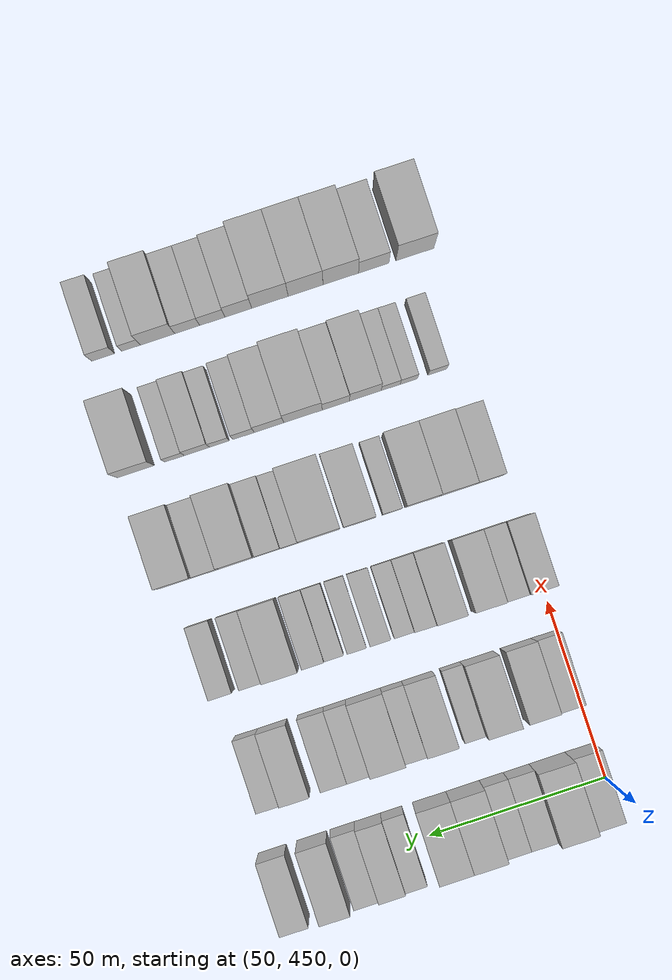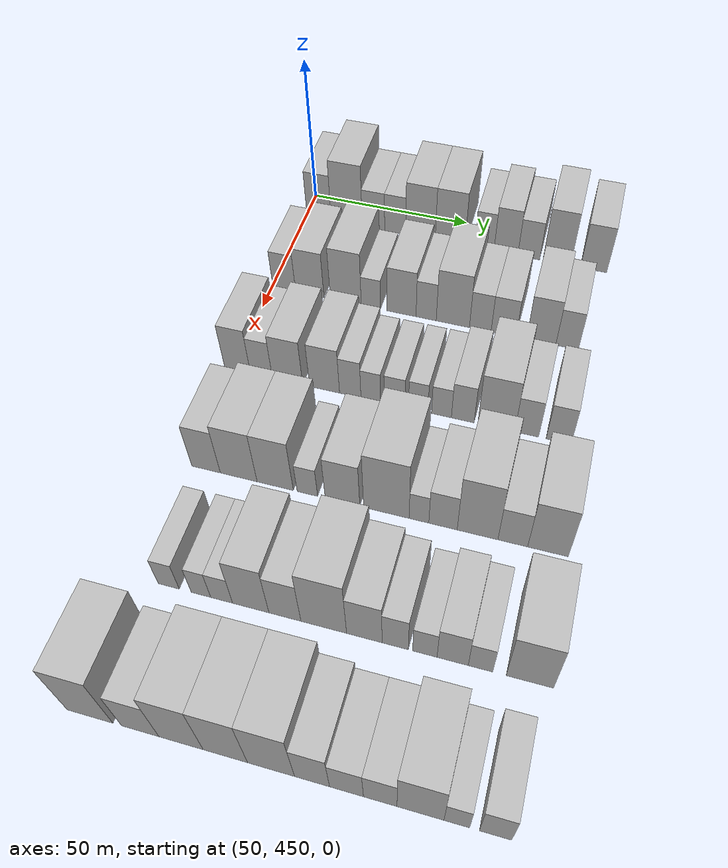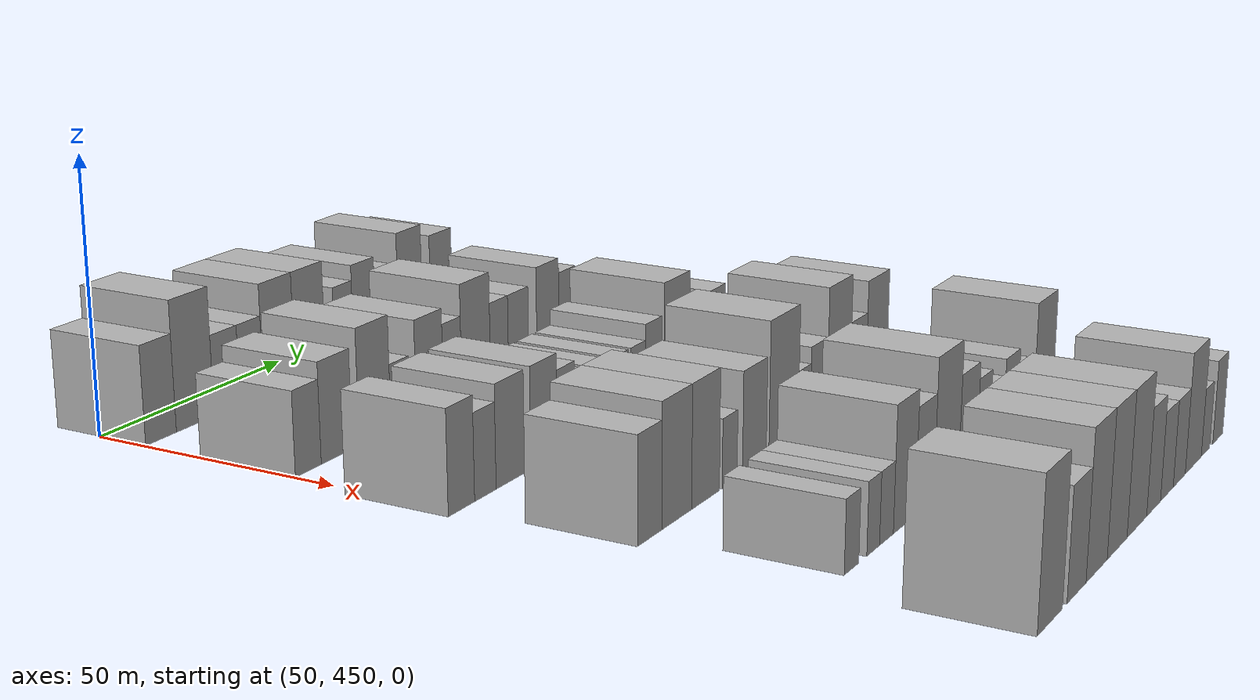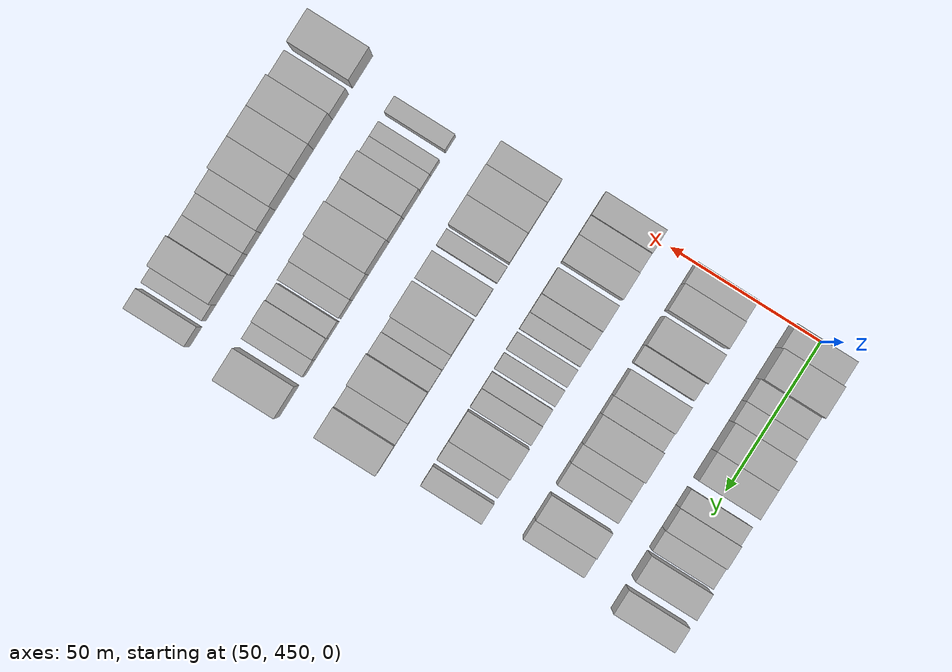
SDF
<sdf version="1.6">
 <world name="default">
  <model name="building_108">
   <static>1</static>
   <pose>50.0000 454.2771 0 0.000000 0.000000 0.000000</pose>
   <link name="link">
    <pose>0 0 9.00 0 0 0</pose>
    <collision name="collision"><geometry><box><size>20.0000 8.0260 18.0000</size></box></geometry></collision>
    <visual name="visual">
     <cast_shadows>0</cast_shadows>
     <geometry><box><size>20.0000 8.0260 18.0000</size></box></geometry>
     <material>
      <script>
       <uri>model://HANNAS_wall/materials/scripts</uri>
       <uri>model://HANNAS_wall/materials/textures</uri>
       <name>vrc/HANNAS_wall</name>
      </script>
     </material>
    </visual>
   </link>
  </model>
  <model name="building_109">
   <static>1</static>
   <pose>50.0000 463.4015 0 0.000000 0.000000 0.000000</pose>
   <link name="link">
    <pose>0 0 12.00 0 0 0</pose>
    <collision name="collision"><geometry><box><size>20.0000 10.2229 24.0000</size></box></geometry></collision>
    <visual name="visual">
     <cast_shadows>0</cast_shadows>
     <geometry><box><size>20.0000 10.2229 24.0000</size></box></geometry>
     <material>
      <script>
       <uri>model://HANNAS_wall/materials/scripts</uri>
       <uri>model://HANNAS_wall/materials/textures</uri>
       <name>vrc/HANNAS_wall</name>
      </script>
     </material>
    </visual>
   </link>
  </model>
  <model name="building_110">
   <static>1</static>
   <pose>50.0000 472.1672 0 0.000000 0.000000 0.000000</pose>
   <link name="link">
    <pose>0 0 7.50 0 0 0</pose>
    <collision name="collision"><geometry><box><size>20.0000 7.3084 15.0000</size></box></geometry></collision>
    <visual name="visual">
     <cast_shadows>0</cast_shadows>
     <geometry><box><size>20.0000 7.3084 15.0000</size></box></geometry>
     <material>
      <script>
       <uri>model://HANNAS_wall/materials/scripts</uri>
       <uri>model://HANNAS_wall/materials/textures</uri>
       <name>vrc/HANNAS_wall</name>
      </script>
     </material>
    </visual>
   </link>
  </model>
  <model name="building_111">
   <static>1</static>
   <pose>50.0000 479.2193 0 0.000000 0.000000 0.000000</pose>
   <link name="link">
    <pose>0 0 7.50 0 0 0</pose>
    <collision name="collision"><geometry><box><size>20.0000 6.7959 15.0000</size></box></geometry></collision>
    <visual name="visual">
     <cast_shadows>0</cast_shadows>
     <geometry><box><size>20.0000 6.7959 15.0000</size></box></geometry>
     <material>
      <script>
       <uri>model://HANNAS_wall/materials/scripts</uri>
       <uri>model://HANNAS_wall/materials/textures</uri>
       <name>vrc/HANNAS_wall</name>
      </script>
     </material>
    </visual>
   </link>
  </model>
  <model name="building_112">
   <static>1</static>
   <pose>50.0000 487.3490 0 0.000000 0.000000 0.000000</pose>
   <link name="link">
    <pose>0 0 10.50 0 0 0</pose>
    <collision name="collision"><geometry><box><size>20.0000 9.4635 21.0000</size></box></geometry></collision>
    <visual name="visual">
     <cast_shadows>0</cast_shadows>
     <geometry><box><size>20.0000 9.4635 21.0000</size></box></geometry>
     <material>
      <script>
       <uri>model://HANNAS_wall/materials/scripts</uri>
       <uri>model://HANNAS_wall/materials/textures</uri>
       <name>vrc/HANNAS_wall</name>
      </script>
     </material>
    </visual>
   </link>
  </model>
  <model name="building_113">
   <static>1</static>
   <pose>50.0000 496.8126 0 0.000000 0.000000 0.000000</pose>
   <link name="link">
    <pose>0 0 10.50 0 0 0</pose>
    <collision name="collision"><geometry><box><size>20.0000 9.4638 21.0000</size></box></geometry></collision>
    <visual name="visual">
     <cast_shadows>0</cast_shadows>
     <geometry><box><size>20.0000 9.4638 21.0000</size></box></geometry>
     <material>
      <script>
       <uri>model://HANNAS_wall/materials/scripts</uri>
       <uri>model://HANNAS_wall/materials/textures</uri>
       <name>vrc/HANNAS_wall</name>
      </script>
     </material>
    </visual>
   </link>
  </model>
  <model name="building_114">
   <static>1</static>
   <pose>50.0000 507.5880 0 0.000000 0.000000 0.000000</pose>
   <link name="link">
    <pose>0 0 7.50 0 0 0</pose>
    <collision name="collision"><geometry><box><size>20.0000 6.0870 15.0000</size></box></geometry></collision>
    <visual name="visual">
     <cast_shadows>0</cast_shadows>
     <geometry><box><size>20.0000 6.0870 15.0000</size></box></geometry>
     <material>
      <script>
       <uri>model://HANNAS_wall/materials/scripts</uri>
       <uri>model://HANNAS_wall/materials/textures</uri>
       <name>vrc/HANNAS_wall</name>
      </script>
     </material>
    </visual>
   </link>
  </model>
  <model name="building_115">
   <static>1</static>
   <pose>50.0000 514.3522 0 0.000000 0.000000 0.000000</pose>
   <link name="link">
    <pose>0 0 9.00 0 0 0</pose>
    <collision name="collision"><geometry><box><size>20.0000 7.4412 18.0000</size></box></geometry></collision>
    <visual name="visual">
     <cast_shadows>0</cast_shadows>
     <geometry><box><size>20.0000 7.4412 18.0000</size></box></geometry>
     <material>
      <script>
       <uri>model://HANNAS_wall/materials/scripts</uri>
       <uri>model://HANNAS_wall/materials/textures</uri>
       <name>vrc/HANNAS_wall</name>
      </script>
     </material>
    </visual>
   </link>
  </model>
  <model name="building_116">
   <static>1</static>
   <pose>50.0000 521.4611 0 0.000000 0.000000 0.000000</pose>
   <link name="link">
    <pose>0 0 7.50 0 0 0</pose>
    <collision name="collision"><geometry><box><size>20.0000 6.7766 15.0000</size></box></geometry></collision>
    <visual name="visual">
     <cast_shadows>0</cast_shadows>
     <geometry><box><size>20.0000 6.7766 15.0000</size></box></geometry>
     <material>
      <script>
       <uri>model://HANNAS_wall/materials/scripts</uri>
       <uri>model://HANNAS_wall/materials/textures</uri>
       <name>vrc/HANNAS_wall</name>
      </script>
     </material>
    </visual>
   </link>
  </model>
  <model name="building_117">
   <static>1</static>
   <pose>50.0000 530.0704 0 0.000000 0.000000 0.000000</pose>
   <link name="link">
    <pose>0 0 10.50 0 0 0</pose>
    <collision name="collision"><geometry><box><size>20.0000 8.4420 21.0000</size></box></geometry></collision>
    <visual name="visual">
     <cast_shadows>0</cast_shadows>
     <geometry><box><size>20.0000 8.4420 21.0000</size></box></geometry>
     <material>
      <script>
       <uri>model://HANNAS_wall/materials/scripts</uri>
       <uri>model://HANNAS_wall/materials/textures</uri>
       <name>vrc/HANNAS_wall</name>
      </script>
     </material>
    </visual>
   </link>
  </model>
  <model name="building_118">
   <static>1</static>
   <pose>50.0000 541.2532 0 0.000000 0.000000 0.000000</pose>
   <link name="link">
    <pose>0 0 9.00 0 0 0</pose>
    <collision name="collision"><geometry><box><size>20.0000 7.9237 18.0000</size></box></geometry></collision>
    <visual name="visual">
     <cast_shadows>0</cast_shadows>
     <geometry><box><size>20.0000 7.9237 18.0000</size></box></geometry>
     <material>
      <script>
       <uri>model://HANNAS_wall/materials/scripts</uri>
       <uri>model://HANNAS_wall/materials/textures</uri>
       <name>vrc/HANNAS_wall</name>
      </script>
     </material>
    </visual>
   </link>
  </model>
  <model name="building_225">
   <static>1</static>
   <pose>82.0000 453.8159 0 0.000000 0.000000 0.000000</pose>
   <link name="link">
    <pose>0 0 7.50 0 0 0</pose>
    <collision name="collision"><geometry><box><size>20.0000 7.0772 15.0000</size></box></geometry></collision>
    <visual name="visual">
     <cast_shadows>0</cast_shadows>
     <geometry><box><size>20.0000 7.0772 15.0000</size></box></geometry>
     <material>
      <script>
       <uri>model://HANNAS_wall/materials/scripts</uri>
       <uri>model://HANNAS_wall/materials/textures</uri>
       <name>vrc/HANNAS_wall</name>
      </script>
     </material>
    </visual>
   </link>
  </model>
  <model name="building_226">
   <static>1</static>
   <pose>82.0000 461.7477 0 0.000000 0.000000 0.000000</pose>
   <link name="link">
    <pose>0 0 9.00 0 0 0</pose>
    <collision name="collision"><geometry><box><size>20.0000 8.7863 18.0000</size></box></geometry></collision>
    <visual name="visual">
     <cast_shadows>0</cast_shadows>
     <geometry><box><size>20.0000 8.7863 18.0000</size></box></geometry>
     <material>
      <script>
       <uri>model://HANNAS_wall/materials/scripts</uri>
       <uri>model://HANNAS_wall/materials/textures</uri>
       <name>vrc/HANNAS_wall</name>
      </script>
     </material>
    </visual>
   </link>
  </model>
  <model name="building_227">
   <static>1</static>
   <pose>82.0000 472.8587 0 0.000000 0.000000 0.000000</pose>
   <link name="link">
    <pose>0 0 10.50 0 0 0</pose>
    <collision name="collision"><geometry><box><size>20.0000 9.4357 21.0000</size></box></geometry></collision>
    <visual name="visual">
     <cast_shadows>0</cast_shadows>
     <geometry><box><size>20.0000 9.4357 21.0000</size></box></geometry>
     <material>
      <script>
       <uri>model://HANNAS_wall/materials/scripts</uri>
       <uri>model://HANNAS_wall/materials/textures</uri>
       <name>vrc/HANNAS_wall</name>
      </script>
     </material>
    </visual>
   </link>
  </model>
  <model name="building_228">
   <static>1</static>
   <pose>82.0000 480.4964 0 0.000000 0.000000 0.000000</pose>
   <link name="link">
    <pose>0 0 6.00 0 0 0</pose>
    <collision name="collision"><geometry><box><size>20.0000 5.8397 12.0000</size></box></geometry></collision>
    <visual name="visual">
     <cast_shadows>0</cast_shadows>
     <geometry><box><size>20.0000 5.8397 12.0000</size></box></geometry>
     <material>
      <script>
       <uri>model://HANNAS_wall/materials/scripts</uri>
       <uri>model://HANNAS_wall/materials/textures</uri>
       <name>vrc/HANNAS_wall</name>
      </script>
     </material>
    </visual>
   </link>
  </model>
  <model name="building_229">
   <static>1</static>
   <pose>82.0000 489.7523 0 0.000000 0.000000 0.000000</pose>
   <link name="link">
    <pose>0 0 9.00 0 0 0</pose>
    <collision name="collision"><geometry><box><size>20.0000 8.6721 18.0000</size></box></geometry></collision>
    <visual name="visual">
     <cast_shadows>0</cast_shadows>
     <geometry><box><size>20.0000 8.6721 18.0000</size></box></geometry>
     <material>
      <script>
       <uri>model://HANNAS_wall/materials/scripts</uri>
       <uri>model://HANNAS_wall/materials/textures</uri>
       <name>vrc/HANNAS_wall</name>
      </script>
     </material>
    </visual>
   </link>
  </model>
  <model name="building_230">
   <static>1</static>
   <pose>82.0000 497.0952 0 0.000000 0.000000 0.000000</pose>
   <link name="link">
    <pose>0 0 7.50 0 0 0</pose>
    <collision name="collision"><geometry><box><size>20.0000 6.0137 15.0000</size></box></geometry></collision>
    <visual name="visual">
     <cast_shadows>0</cast_shadows>
     <geometry><box><size>20.0000 6.0137 15.0000</size></box></geometry>
     <material>
      <script>
       <uri>model://HANNAS_wall/materials/scripts</uri>
       <uri>model://HANNAS_wall/materials/textures</uri>
       <name>vrc/HANNAS_wall</name>
      </script>
     </material>
    </visual>
   </link>
  </model>
  <model name="building_231">
   <static>1</static>
   <pose>82.0000 504.9942 0 0.000000 0.000000 0.000000</pose>
   <link name="link">
    <pose>0 0 10.50 0 0 0</pose>
    <collision name="collision"><geometry><box><size>20.0000 9.7842 21.0000</size></box></geometry></collision>
    <visual name="visual">
     <cast_shadows>0</cast_shadows>
     <geometry><box><size>20.0000 9.7842 21.0000</size></box></geometry>
     <material>
      <script>
       <uri>model://HANNAS_wall/materials/scripts</uri>
       <uri>model://HANNAS_wall/materials/textures</uri>
       <name>vrc/HANNAS_wall</name>
      </script>
     </material>
    </visual>
   </link>
  </model>
  <model name="building_232">
   <static>1</static>
   <pose>82.0000 513.0436 0 0.000000 0.000000 0.000000</pose>
   <link name="link">
    <pose>0 0 7.50 0 0 0</pose>
    <collision name="collision"><geometry><box><size>20.0000 6.3147 15.0000</size></box></geometry></collision>
    <visual name="visual">
     <cast_shadows>0</cast_shadows>
     <geometry><box><size>20.0000 6.3147 15.0000</size></box></geometry>
     <material>
      <script>
       <uri>model://HANNAS_wall/materials/scripts</uri>
       <uri>model://HANNAS_wall/materials/textures</uri>
       <name>vrc/HANNAS_wall</name>
      </script>
     </material>
    </visual>
   </link>
  </model>
  <model name="building_233">
   <static>1</static>
   <pose>82.0000 519.8409 0 0.000000 0.000000 0.000000</pose>
   <link name="link">
    <pose>0 0 7.50 0 0 0</pose>
    <collision name="collision"><geometry><box><size>20.0000 7.2799 15.0000</size></box></geometry></collision>
    <visual name="visual">
     <cast_shadows>0</cast_shadows>
     <geometry><box><size>20.0000 7.2799 15.0000</size></box></geometry>
     <material>
      <script>
       <uri>model://HANNAS_wall/materials/scripts</uri>
       <uri>model://HANNAS_wall/materials/textures</uri>
       <name>vrc/HANNAS_wall</name>
      </script>
     </material>
    </visual>
   </link>
  </model>
  <model name="building_234">
   <static>1</static>
   <pose>82.0000 530.6489 0 0.000000 0.000000 0.000000</pose>
   <link name="link">
    <pose>0 0 9.00 0 0 0</pose>
    <collision name="collision"><geometry><box><size>20.0000 8.3361 18.0000</size></box></geometry></collision>
    <visual name="visual">
     <cast_shadows>0</cast_shadows>
     <geometry><box><size>20.0000 8.3361 18.0000</size></box></geometry>
     <material>
      <script>
       <uri>model://HANNAS_wall/materials/scripts</uri>
       <uri>model://HANNAS_wall/materials/textures</uri>
       <name>vrc/HANNAS_wall</name>
      </script>
     </material>
    </visual>
   </link>
  </model>
  <model name="building_235">
   <static>1</static>
   <pose>82.0000 538.0205 0 0.000000 0.000000 0.000000</pose>
   <link name="link">
    <pose>0 0 7.50 0 0 0</pose>
    <collision name="collision"><geometry><box><size>20.0000 6.4071 15.0000</size></box></geometry></collision>
    <visual name="visual">
     <cast_shadows>0</cast_shadows>
     <geometry><box><size>20.0000 6.4071 15.0000</size></box></geometry>
     <material>
      <script>
       <uri>model://HANNAS_wall/materials/scripts</uri>
       <uri>model://HANNAS_wall/materials/textures</uri>
       <name>vrc/HANNAS_wall</name>
      </script>
     </material>
    </visual>
   </link>
  </model>
  <model name="building_341">
   <static>1</static>
   <pose>114.0000 451.3729 0 0.000000 0.000000 0.000000</pose>
   <link name="link">
    <pose>0 0 9.00 0 0 0</pose>
    <collision name="collision"><geometry><box><size>20.0000 7.5914 18.0000</size></box></geometry></collision>
    <visual name="visual">
     <cast_shadows>0</cast_shadows>
     <geometry><box><size>20.0000 7.5914 18.0000</size></box></geometry>
     <material>
      <script>
       <uri>model://HANNAS_wall/materials/scripts</uri>
       <uri>model://HANNAS_wall/materials/textures</uri>
       <name>vrc/HANNAS_wall</name>
      </script>
     </material>
    </visual>
   </link>
  </model>
  <model name="building_342">
   <static>1</static>
   <pose>114.0000 458.3645 0 0.000000 0.000000 0.000000</pose>
   <link name="link">
    <pose>0 0 7.50 0 0 0</pose>
    <collision name="collision"><geometry><box><size>20.0000 6.3919 15.0000</size></box></geometry></collision>
    <visual name="visual">
     <cast_shadows>0</cast_shadows>
     <geometry><box><size>20.0000 6.3919 15.0000</size></box></geometry>
     <material>
      <script>
       <uri>model://HANNAS_wall/materials/scripts</uri>
       <uri>model://HANNAS_wall/materials/textures</uri>
       <name>vrc/HANNAS_wall</name>
      </script>
     </material>
    </visual>
   </link>
  </model>
  <model name="building_343">
   <static>1</static>
   <pose>114.0000 465.9422 0 0.000000 0.000000 0.000000</pose>
   <link name="link">
    <pose>0 0 9.00 0 0 0</pose>
    <collision name="collision"><geometry><box><size>20.0000 8.7634 18.0000</size></box></geometry></collision>
    <visual name="visual">
     <cast_shadows>0</cast_shadows>
     <geometry><box><size>20.0000 8.7634 18.0000</size></box></geometry>
     <material>
      <script>
       <uri>model://HANNAS_wall/materials/scripts</uri>
       <uri>model://HANNAS_wall/materials/textures</uri>
       <name>vrc/HANNAS_wall</name>
      </script>
     </material>
    </visual>
   </link>
  </model>
  <model name="building_344">
   <static>1</static>
   <pose>114.0000 476.5803 0 0.000000 0.000000 0.000000</pose>
   <link name="link">
    <pose>0 0 9.00 0 0 0</pose>
    <collision name="collision"><geometry><box><size>20.0000 8.5128 18.0000</size></box></geometry></collision>
    <visual name="visual">
     <cast_shadows>0</cast_shadows>
     <geometry><box><size>20.0000 8.5128 18.0000</size></box></geometry>
     <material>
      <script>
       <uri>model://HANNAS_wall/materials/scripts</uri>
       <uri>model://HANNAS_wall/materials/textures</uri>
       <name>vrc/HANNAS_wall</name>
      </script>
     </material>
    </visual>
   </link>
  </model>
  <model name="building_345">
   <static>1</static>
   <pose>114.0000 483.8588 0 0.000000 0.000000 0.000000</pose>
   <link name="link">
    <pose>0 0 7.50 0 0 0</pose>
    <collision name="collision"><geometry><box><size>20.0000 6.0441 15.0000</size></box></geometry></collision>
    <visual name="visual">
     <cast_shadows>0</cast_shadows>
     <geometry><box><size>20.0000 6.0441 15.0000</size></box></geometry>
     <material>
      <script>
       <uri>model://HANNAS_wall/materials/scripts</uri>
       <uri>model://HANNAS_wall/materials/textures</uri>
       <name>vrc/HANNAS_wall</name>
      </script>
     </material>
    </visual>
   </link>
  </model>
  <model name="building_346">
   <static>1</static>
   <pose>114.0000 489.6306 0 0.000000 0.000000 0.000000</pose>
   <link name="link">
    <pose>0 0 6.00 0 0 0</pose>
    <collision name="collision"><geometry><box><size>20.0000 5.4995 12.0000</size></box></geometry></collision>
    <visual name="visual">
     <cast_shadows>0</cast_shadows>
     <geometry><box><size>20.0000 5.4995 12.0000</size></box></geometry>
     <material>
      <script>
       <uri>model://HANNAS_wall/materials/scripts</uri>
       <uri>model://HANNAS_wall/materials/textures</uri>
       <name>vrc/HANNAS_wall</name>
      </script>
     </material>
    </visual>
   </link>
  </model>
  <model name="building_347">
   <static>1</static>
   <pose>114.0000 496.2754 0 0.000000 0.000000 0.000000</pose>
   <link name="link">
    <pose>0 0 6.00 0 0 0</pose>
    <collision name="collision"><geometry><box><size>20.0000 5.7899 12.0000</size></box></geometry></collision>
    <visual name="visual">
     <cast_shadows>0</cast_shadows>
     <geometry><box><size>20.0000 5.7899 12.0000</size></box></geometry>
     <material>
      <script>
       <uri>model://HANNAS_wall/materials/scripts</uri>
       <uri>model://HANNAS_wall/materials/textures</uri>
       <name>vrc/HANNAS_wall</name>
      </script>
     </material>
    </visual>
   </link>
  </model>
  <model name="building_348">
   <static>1</static>
   <pose>114.0000 502.8290 0 0.000000 0.000000 0.000000</pose>
   <link name="link">
    <pose>0 0 6.00 0 0 0</pose>
    <collision name="collision"><geometry><box><size>20.0000 5.3175 12.0000</size></box></geometry></collision>
    <visual name="visual">
     <cast_shadows>0</cast_shadows>
     <geometry><box><size>20.0000 5.3175 12.0000</size></box></geometry>
     <material>
      <script>
       <uri>model://HANNAS_wall/materials/scripts</uri>
       <uri>model://HANNAS_wall/materials/textures</uri>
       <name>vrc/HANNAS_wall</name>
      </script>
     </material>
    </visual>
   </link>
  </model>
  <model name="building_349">
   <static>1</static>
   <pose>114.0000 509.2004 0 0.000000 0.000000 0.000000</pose>
   <link name="link">
    <pose>0 0 6.00 0 0 0</pose>
    <collision name="collision"><geometry><box><size>20.0000 5.4253 12.0000</size></box></geometry></collision>
    <visual name="visual">
     <cast_shadows>0</cast_shadows>
     <geometry><box><size>20.0000 5.4253 12.0000</size></box></geometry>
     <material>
      <script>
       <uri>model://HANNAS_wall/materials/scripts</uri>
       <uri>model://HANNAS_wall/materials/textures</uri>
       <name>vrc/HANNAS_wall</name>
      </script>
     </material>
    </visual>
   </link>
  </model>
  <model name="building_350">
   <static>1</static>
   <pose>114.0000 515.0055 0 0.000000 0.000000 0.000000</pose>
   <link name="link">
    <pose>0 0 7.50 0 0 0</pose>
    <collision name="collision"><geometry><box><size>20.0000 6.1849 15.0000</size></box></geometry></collision>
    <visual name="visual">
     <cast_shadows>0</cast_shadows>
     <geometry><box><size>20.0000 6.1849 15.0000</size></box></geometry>
     <material>
      <script>
       <uri>model://HANNAS_wall/materials/scripts</uri>
       <uri>model://HANNAS_wall/materials/textures</uri>
       <name>vrc/HANNAS_wall</name>
      </script>
     </material>
    </visual>
   </link>
  </model>
  <model name="building_351">
   <static>1</static>
   <pose>114.0000 524.0434 0 0.000000 0.000000 0.000000</pose>
   <link name="link">
    <pose>0 0 10.50 0 0 0</pose>
    <collision name="collision"><geometry><box><size>20.0000 9.8908 21.0000</size></box></geometry></collision>
    <visual name="visual">
     <cast_shadows>0</cast_shadows>
     <geometry><box><size>20.0000 9.8908 21.0000</size></box></geometry>
     <material>
      <script>
       <uri>model://HANNAS_wall/materials/scripts</uri>
       <uri>model://HANNAS_wall/materials/textures</uri>
       <name>vrc/HANNAS_wall</name>
      </script>
     </material>
    </visual>
   </link>
  </model>
  <model name="building_352">
   <static>1</static>
   <pose>114.0000 532.1655 0 0.000000 0.000000 0.000000</pose>
   <link name="link">
    <pose>0 0 7.50 0 0 0</pose>
    <collision name="collision"><geometry><box><size>20.0000 6.3535 15.0000</size></box></geometry></collision>
    <visual name="visual">
     <cast_shadows>0</cast_shadows>
     <geometry><box><size>20.0000 6.3535 15.0000</size></box></geometry>
     <material>
      <script>
       <uri>model://HANNAS_wall/materials/scripts</uri>
       <uri>model://HANNAS_wall/materials/textures</uri>
       <name>vrc/HANNAS_wall</name>
      </script>
     </material>
    </visual>
   </link>
  </model>
  <model name="building_353">
   <static>1</static>
   <pose>114.0000 540.6003 0 0.000000 0.000000 0.000000</pose>
   <link name="link">
    <pose>0 0 7.50 0 0 0</pose>
    <collision name="collision"><geometry><box><size>20.0000 6.5162 15.0000</size></box></geometry></collision>
    <visual name="visual">
     <cast_shadows>0</cast_shadows>
     <geometry><box><size>20.0000 6.5162 15.0000</size></box></geometry>
     <material>
      <script>
       <uri>model://HANNAS_wall/materials/scripts</uri>
       <uri>model://HANNAS_wall/materials/textures</uri>
       <name>vrc/HANNAS_wall</name>
      </script>
     </material>
    </visual>
   </link>
  </model>
  <model name="building_452">
   <static>1</static>
   <pose>146.0000 455.0857 0 0.000000 0.000000 0.000000</pose>
   <link name="link">
    <pose>0 0 9.00 0 0 0</pose>
    <collision name="collision"><geometry><box><size>20.0000 7.7982 18.0000</size></box></geometry></collision>
    <visual name="visual">
     <cast_shadows>0</cast_shadows>
     <geometry><box><size>20.0000 7.7982 18.0000</size></box></geometry>
     <material>
      <script>
       <uri>model://HANNAS_wall/materials/scripts</uri>
       <uri>model://HANNAS_wall/materials/textures</uri>
       <name>vrc/HANNAS_wall</name>
      </script>
     </material>
    </visual>
   </link>
  </model>
  <model name="building_453">
   <static>1</static>
   <pose>146.0000 463.9484 0 0.000000 0.000000 0.000000</pose>
   <link name="link">
    <pose>0 0 10.50 0 0 0</pose>
    <collision name="collision"><geometry><box><size>20.0000 9.9272 21.0000</size></box></geometry></collision>
    <visual name="visual">
     <cast_shadows>0</cast_shadows>
     <geometry><box><size>20.0000 9.9272 21.0000</size></box></geometry>
     <material>
      <script>
       <uri>model://HANNAS_wall/materials/scripts</uri>
       <uri>model://HANNAS_wall/materials/textures</uri>
       <name>vrc/HANNAS_wall</name>
      </script>
     </material>
    </visual>
   </link>
  </model>
  <model name="building_454">
   <static>1</static>
   <pose>146.0000 473.7471 0 0.000000 0.000000 0.000000</pose>
   <link name="link">
    <pose>0 0 10.50 0 0 0</pose>
    <collision name="collision"><geometry><box><size>20.0000 9.6702 21.0000</size></box></geometry></collision>
    <visual name="visual">
     <cast_shadows>0</cast_shadows>
     <geometry><box><size>20.0000 9.6702 21.0000</size></box></geometry>
     <material>
      <script>
       <uri>model://HANNAS_wall/materials/scripts</uri>
       <uri>model://HANNAS_wall/materials/textures</uri>
       <name>vrc/HANNAS_wall</name>
      </script>
     </material>
    </visual>
   </link>
  </model>
  <model name="building_455">
   <static>1</static>
   <pose>146.0000 482.2846 0 0.000000 0.000000 0.000000</pose>
   <link name="link">
    <pose>0 0 6.00 0 0 0</pose>
    <collision name="collision"><geometry><box><size>20.0000 5.4046 12.0000</size></box></geometry></collision>
    <visual name="visual">
     <cast_shadows>0</cast_shadows>
     <geometry><box><size>20.0000 5.4046 12.0000</size></box></geometry>
     <material>
      <script>
       <uri>model://HANNAS_wall/materials/scripts</uri>
       <uri>model://HANNAS_wall/materials/textures</uri>
       <name>vrc/HANNAS_wall</name>
      </script>
     </material>
    </visual>
   </link>
  </model>
  <model name="building_456">
   <static>1</static>
   <pose>146.0000 491.4811 0 0.000000 0.000000 0.000000</pose>
   <link name="link">
    <pose>0 0 9.00 0 0 0</pose>
    <collision name="collision"><geometry><box><size>20.0000 8.9884 18.0000</size></box></geometry></collision>
    <visual name="visual">
     <cast_shadows>0</cast_shadows>
     <geometry><box><size>20.0000 8.9884 18.0000</size></box></geometry>
     <material>
      <script>
       <uri>model://HANNAS_wall/materials/scripts</uri>
       <uri>model://HANNAS_wall/materials/textures</uri>
       <name>vrc/HANNAS_wall</name>
      </script>
     </material>
    </visual>
   </link>
  </model>
  <model name="building_457">
   <static>1</static>
   <pose>146.0000 502.7923 0 0.000000 0.000000 0.000000</pose>
   <link name="link">
    <pose>0 0 12.00 0 0 0</pose>
    <collision name="collision"><geometry><box><size>20.0000 11.6340 24.0000</size></box></geometry></collision>
    <visual name="visual">
     <cast_shadows>0</cast_shadows>
     <geometry><box><size>20.0000 11.6340 24.0000</size></box></geometry>
     <material>
      <script>
       <uri>model://HANNAS_wall/materials/scripts</uri>
       <uri>model://HANNAS_wall/materials/textures</uri>
       <name>vrc/HANNAS_wall</name>
      </script>
     </material>
    </visual>
   </link>
  </model>
  <model name="building_458">
   <static>1</static>
   <pose>146.0000 511.0941 0 0.000000 0.000000 0.000000</pose>
   <link name="link">
    <pose>0 0 6.00 0 0 0</pose>
    <collision name="collision"><geometry><box><size>20.0000 4.9698 12.0000</size></box></geometry></collision>
    <visual name="visual">
     <cast_shadows>0</cast_shadows>
     <geometry><box><size>20.0000 4.9698 12.0000</size></box></geometry>
     <material>
      <script>
       <uri>model://HANNAS_wall/materials/scripts</uri>
       <uri>model://HANNAS_wall/materials/textures</uri>
       <name>vrc/HANNAS_wall</name>
      </script>
     </material>
    </visual>
   </link>
  </model>
  <model name="building_459">
   <static>1</static>
   <pose>146.0000 517.1375 0 0.000000 0.000000 0.000000</pose>
   <link name="link">
    <pose>0 0 7.50 0 0 0</pose>
    <collision name="collision"><geometry><box><size>20.0000 7.1170 15.0000</size></box></geometry></collision>
    <visual name="visual">
     <cast_shadows>0</cast_shadows>
     <geometry><box><size>20.0000 7.1170 15.0000</size></box></geometry>
     <material>
      <script>
       <uri>model://HANNAS_wall/materials/scripts</uri>
       <uri>model://HANNAS_wall/materials/textures</uri>
       <name>vrc/HANNAS_wall</name>
      </script>
     </material>
    </visual>
   </link>
  </model>
  <model name="building_460">
   <static>1</static>
   <pose>146.0000 525.7543 0 0.000000 0.000000 0.000000</pose>
   <link name="link">
    <pose>0 0 12.00 0 0 0</pose>
    <collision name="collision"><geometry><box><size>20.0000 10.1165 24.0000</size></box></geometry></collision>
    <visual name="visual">
     <cast_shadows>0</cast_shadows>
     <geometry><box><size>20.0000 10.1165 24.0000</size></box></geometry>
     <material>
      <script>
       <uri>model://HANNAS_wall/materials/scripts</uri>
       <uri>model://HANNAS_wall/materials/textures</uri>
       <name>vrc/HANNAS_wall</name>
      </script>
     </material>
    </visual>
   </link>
  </model>
  <model name="building_461">
   <static>1</static>
   <pose>146.0000 534.4474 0 0.000000 0.000000 0.000000</pose>
   <link name="link">
    <pose>0 0 7.50 0 0 0</pose>
    <collision name="collision"><geometry><box><size>20.0000 7.2697 15.0000</size></box></geometry></collision>
    <visual name="visual">
     <cast_shadows>0</cast_shadows>
     <geometry><box><size>20.0000 7.2697 15.0000</size></box></geometry>
     <material>
      <script>
       <uri>model://HANNAS_wall/materials/scripts</uri>
       <uri>model://HANNAS_wall/materials/textures</uri>
       <name>vrc/HANNAS_wall</name>
      </script>
     </material>
    </visual>
   </link>
  </model>
  <model name="building_462">
   <static>1</static>
   <pose>146.0000 543.0031 0 0.000000 0.000000 0.000000</pose>
   <link name="link">
    <pose>0 0 10.50 0 0 0</pose>
    <collision name="collision"><geometry><box><size>20.0000 9.8416 21.0000</size></box></geometry></collision>
    <visual name="visual">
     <cast_shadows>0</cast_shadows>
     <geometry><box><size>20.0000 9.8416 21.0000</size></box></geometry>
     <material>
      <script>
       <uri>model://HANNAS_wall/materials/scripts</uri>
       <uri>model://HANNAS_wall/materials/textures</uri>
       <name>vrc/HANNAS_wall</name>
      </script>
     </material>
    </visual>
   </link>
  </model>
  <model name="building_578">
   <static>1</static>
   <pose>178.0000 458.7937 0 0.000000 0.000000 0.000000</pose>
   <link name="link">
    <pose>0 0 6.00 0 0 0</pose>
    <collision name="collision"><geometry><box><size>20.0000 5.3206 12.0000</size></box></geometry></collision>
    <visual name="visual">
     <cast_shadows>0</cast_shadows>
     <geometry><box><size>20.0000 5.3206 12.0000</size></box></geometry>
     <material>
      <script>
       <uri>model://HANNAS_wall/materials/scripts</uri>
       <uri>model://HANNAS_wall/materials/textures</uri>
       <name>vrc/HANNAS_wall</name>
      </script>
     </material>
    </visual>
   </link>
  </model>
  <model name="building_579">
   <static>1</static>
   <pose>178.0000 466.8860 0 0.000000 0.000000 0.000000</pose>
   <link name="link">
    <pose>0 0 6.00 0 0 0</pose>
    <collision name="collision"><geometry><box><size>20.0000 4.8641 12.0000</size></box></geometry></collision>
    <visual name="visual">
     <cast_shadows>0</cast_shadows>
     <geometry><box><size>20.0000 4.8641 12.0000</size></box></geometry>
     <material>
      <script>
       <uri>model://HANNAS_wall/materials/scripts</uri>
       <uri>model://HANNAS_wall/materials/textures</uri>
       <name>vrc/HANNAS_wall</name>
      </script>
     </material>
    </visual>
   </link>
  </model>
  <model name="building_580">
   <static>1</static>
   <pose>178.0000 472.0319 0 0.000000 0.000000 0.000000</pose>
   <link name="link">
    <pose>0 0 6.00 0 0 0</pose>
    <collision name="collision"><geometry><box><size>20.0000 5.4277 12.0000</size></box></geometry></collision>
    <visual name="visual">
     <cast_shadows>0</cast_shadows>
     <geometry><box><size>20.0000 5.4277 12.0000</size></box></geometry>
     <material>
      <script>
       <uri>model://HANNAS_wall/materials/scripts</uri>
       <uri>model://HANNAS_wall/materials/textures</uri>
       <name>vrc/HANNAS_wall</name>
      </script>
     </material>
    </visual>
   </link>
  </model>
  <model name="building_581">
   <static>1</static>
   <pose>178.0000 479.1956 0 0.000000 0.000000 0.000000</pose>
   <link name="link">
    <pose>0 0 10.50 0 0 0</pose>
    <collision name="collision"><geometry><box><size>20.0000 8.8997 21.0000</size></box></geometry></collision>
    <visual name="visual">
     <cast_shadows>0</cast_shadows>
     <geometry><box><size>20.0000 8.8997 21.0000</size></box></geometry>
     <material>
      <script>
       <uri>model://HANNAS_wall/materials/scripts</uri>
       <uri>model://HANNAS_wall/materials/textures</uri>
       <name>vrc/HANNAS_wall</name>
      </script>
     </material>
    </visual>
   </link>
  </model>
  <model name="building_582">
   <static>1</static>
   <pose>178.0000 487.5108 0 0.000000 0.000000 0.000000</pose>
   <link name="link">
    <pose>0 0 9.00 0 0 0</pose>
    <collision name="collision"><geometry><box><size>20.0000 7.7306 18.0000</size></box></geometry></collision>
    <visual name="visual">
     <cast_shadows>0</cast_shadows>
     <geometry><box><size>20.0000 7.7306 18.0000</size></box></geometry>
     <material>
      <script>
       <uri>model://HANNAS_wall/materials/scripts</uri>
       <uri>model://HANNAS_wall/materials/textures</uri>
       <name>vrc/HANNAS_wall</name>
      </script>
     </material>
    </visual>
   </link>
  </model>
  <model name="building_583">
   <static>1</static>
   <pose>178.0000 496.8284 0 0.000000 0.000000 0.000000</pose>
   <link name="link">
    <pose>0 0 12.00 0 0 0</pose>
    <collision name="collision"><geometry><box><size>20.0000 10.9047 24.0000</size></box></geometry></collision>
    <visual name="visual">
     <cast_shadows>0</cast_shadows>
     <geometry><box><size>20.0000 10.9047 24.0000</size></box></geometry>
     <material>
      <script>
       <uri>model://HANNAS_wall/materials/scripts</uri>
       <uri>model://HANNAS_wall/materials/textures</uri>
       <name>vrc/HANNAS_wall</name>
      </script>
     </material>
    </visual>
   </link>
  </model>
  <model name="building_584">
   <static>1</static>
   <pose>178.0000 506.4554 0 0.000000 0.000000 0.000000</pose>
   <link name="link">
    <pose>0 0 9.00 0 0 0</pose>
    <collision name="collision"><geometry><box><size>20.0000 8.3493 18.0000</size></box></geometry></collision>
    <visual name="visual">
     <cast_shadows>0</cast_shadows>
     <geometry><box><size>20.0000 8.3493 18.0000</size></box></geometry>
     <material>
      <script>
       <uri>model://HANNAS_wall/materials/scripts</uri>
       <uri>model://HANNAS_wall/materials/textures</uri>
       <name>vrc/HANNAS_wall</name>
      </script>
     </material>
    </visual>
   </link>
  </model>
  <model name="building_585">
   <static>1</static>
   <pose>178.0000 513.6697 0 0.000000 0.000000 0.000000</pose>
   <link name="link">
    <pose>0 0 7.50 0 0 0</pose>
    <collision name="collision"><geometry><box><size>20.0000 6.0794 15.0000</size></box></geometry></collision>
    <visual name="visual">
     <cast_shadows>0</cast_shadows>
     <geometry><box><size>20.0000 6.0794 15.0000</size></box></geometry>
     <material>
      <script>
       <uri>model://HANNAS_wall/materials/scripts</uri>
       <uri>model://HANNAS_wall/materials/textures</uri>
       <name>vrc/HANNAS_wall</name>
      </script>
     </material>
    </visual>
   </link>
  </model>
  <model name="building_586">
   <static>1</static>
   <pose>178.0000 520.5160 0 0.000000 0.000000 0.000000</pose>
   <link name="link">
    <pose>0 0 6.00 0 0 0</pose>
    <collision name="collision"><geometry><box><size>20.0000 5.6132 12.0000</size></box></geometry></collision>
    <visual name="visual">
     <cast_shadows>0</cast_shadows>
     <geometry><box><size>20.0000 5.6132 12.0000</size></box></geometry>
     <material>
      <script>
       <uri>model://HANNAS_wall/materials/scripts</uri>
       <uri>model://HANNAS_wall/materials/textures</uri>
       <name>vrc/HANNAS_wall</name>
      </script>
     </material>
    </visual>
   </link>
  </model>
  <model name="building_587">
   <static>1</static>
   <pose>178.0000 526.8739 0 0.000000 0.000000 0.000000</pose>
   <link name="link">
    <pose>0 0 7.50 0 0 0</pose>
    <collision name="collision"><geometry><box><size>20.0000 7.1025 15.0000</size></box></geometry></collision>
    <visual name="visual">
     <cast_shadows>0</cast_shadows>
     <geometry><box><size>20.0000 7.1025 15.0000</size></box></geometry>
     <material>
      <script>
       <uri>model://HANNAS_wall/materials/scripts</uri>
       <uri>model://HANNAS_wall/materials/textures</uri>
       <name>vrc/HANNAS_wall</name>
      </script>
     </material>
    </visual>
   </link>
  </model>
  <model name="building_588">
   <static>1</static>
   <pose>178.0000 533.2027 0 0.000000 0.000000 0.000000</pose>
   <link name="link">
    <pose>0 0 6.00 0 0 0</pose>
    <collision name="collision"><geometry><box><size>20.0000 5.5551 12.0000</size></box></geometry></collision>
    <visual name="visual">
     <cast_shadows>0</cast_shadows>
     <geometry><box><size>20.0000 5.5551 12.0000</size></box></geometry>
     <material>
      <script>
       <uri>model://HANNAS_wall/materials/scripts</uri>
       <uri>model://HANNAS_wall/materials/textures</uri>
       <name>vrc/HANNAS_wall</name>
      </script>
     </material>
    </visual>
   </link>
  </model>
  <model name="building_589">
   <static>1</static>
   <pose>178.0000 544.2280 0 0.000000 0.000000 0.000000</pose>
   <link name="link">
    <pose>0 0 10.50 0 0 0</pose>
    <collision name="collision"><geometry><box><size>20.0000 10.4956 21.0000</size></box></geometry></collision>
    <visual name="visual">
     <cast_shadows>0</cast_shadows>
     <geometry><box><size>20.0000 10.4956 21.0000</size></box></geometry>
     <material>
      <script>
       <uri>model://HANNAS_wall/materials/scripts</uri>
       <uri>model://HANNAS_wall/materials/textures</uri>
       <name>vrc/HANNAS_wall</name>
      </script>
     </material>
    </visual>
   </link>
  </model>
  <model name="building_687">
   <static>1</static>
   <pose>210.0000 454.5918 0 0.000000 0.000000 0.000000</pose>
   <link name="link">
    <pose>0 0 12.00 0 0 0</pose>
    <collision name="collision"><geometry><box><size>20.0000 10.7247 24.0000</size></box></geometry></collision>
    <visual name="visual">
     <cast_shadows>0</cast_shadows>
     <geometry><box><size>20.0000 10.7247 24.0000</size></box></geometry>
     <material>
      <script>
       <uri>model://HANNAS_wall/materials/scripts</uri>
       <uri>model://HANNAS_wall/materials/textures</uri>
       <name>vrc/HANNAS_wall</name>
      </script>
     </material>
    </visual>
   </link>
  </model>
  <model name="building_688">
   <static>1</static>
   <pose>210.0000 466.2587 0 0.000000 0.000000 0.000000</pose>
   <link name="link">
    <pose>0 0 9.00 0 0 0</pose>
    <collision name="collision"><geometry><box><size>20.0000 8.6092 18.0000</size></box></geometry></collision>
    <visual name="visual">
     <cast_shadows>0</cast_shadows>
     <geometry><box><size>20.0000 8.6092 18.0000</size></box></geometry>
     <material>
      <script>
       <uri>model://HANNAS_wall/materials/scripts</uri>
       <uri>model://HANNAS_wall/materials/textures</uri>
       <name>vrc/HANNAS_wall</name>
      </script>
     </material>
    </visual>
   </link>
  </model>
  <model name="building_689">
   <static>1</static>
   <pose>210.0000 475.5846 0 0.000000 0.000000 0.000000</pose>
   <link name="link">
    <pose>0 0 12.00 0 0 0</pose>
    <collision name="collision"><geometry><box><size>20.0000 10.0425 24.0000</size></box></geometry></collision>
    <visual name="visual">
     <cast_shadows>0</cast_shadows>
     <geometry><box><size>20.0000 10.0425 24.0000</size></box></geometry>
     <material>
      <script>
       <uri>model://HANNAS_wall/materials/scripts</uri>
       <uri>model://HANNAS_wall/materials/textures</uri>
       <name>vrc/HANNAS_wall</name>
      </script>
     </material>
    </visual>
   </link>
  </model>
  <model name="building_690">
   <static>1</static>
   <pose>210.0000 485.5567 0 0.000000 0.000000 0.000000</pose>
   <link name="link">
    <pose>0 0 12.00 0 0 0</pose>
    <collision name="collision"><geometry><box><size>20.0000 9.9015 24.0000</size></box></geometry></collision>
    <visual name="visual">
     <cast_shadows>0</cast_shadows>
     <geometry><box><size>20.0000 9.9015 24.0000</size></box></geometry>
     <material>
      <script>
       <uri>model://HANNAS_wall/materials/scripts</uri>
       <uri>model://HANNAS_wall/materials/textures</uri>
       <name>vrc/HANNAS_wall</name>
      </script>
     </material>
    </visual>
   </link>
  </model>
  <model name="building_691">
   <static>1</static>
   <pose>210.0000 495.6526 0 0.000000 0.000000 0.000000</pose>
   <link name="link">
    <pose>0 0 12.00 0 0 0</pose>
    <collision name="collision"><geometry><box><size>20.0000 10.2903 24.0000</size></box></geometry></collision>
    <visual name="visual">
     <cast_shadows>0</cast_shadows>
     <geometry><box><size>20.0000 10.2903 24.0000</size></box></geometry>
     <material>
      <script>
       <uri>model://HANNAS_wall/materials/scripts</uri>
       <uri>model://HANNAS_wall/materials/textures</uri>
       <name>vrc/HANNAS_wall</name>
      </script>
     </material>
    </visual>
   </link>
  </model>
  <model name="building_692">
   <static>1</static>
   <pose>210.0000 504.5839 0 0.000000 0.000000 0.000000</pose>
   <link name="link">
    <pose>0 0 9.00 0 0 0</pose>
    <collision name="collision"><geometry><box><size>20.0000 7.5723 18.0000</size></box></geometry></collision>
    <visual name="visual">
     <cast_shadows>0</cast_shadows>
     <geometry><box><size>20.0000 7.5723 18.0000</size></box></geometry>
     <material>
      <script>
       <uri>model://HANNAS_wall/materials/scripts</uri>
       <uri>model://HANNAS_wall/materials/textures</uri>
       <name>vrc/HANNAS_wall</name>
      </script>
     </material>
    </visual>
   </link>
  </model>
  <model name="building_693">
   <static>1</static>
   <pose>210.0000 511.9787 0 0.000000 0.000000 0.000000</pose>
   <link name="link">
    <pose>0 0 7.50 0 0 0</pose>
    <collision name="collision"><geometry><box><size>20.0000 7.2173 15.0000</size></box></geometry></collision>
    <visual name="visual">
     <cast_shadows>0</cast_shadows>
     <geometry><box><size>20.0000 7.2173 15.0000</size></box></geometry>
     <material>
      <script>
       <uri>model://HANNAS_wall/materials/scripts</uri>
       <uri>model://HANNAS_wall/materials/textures</uri>
       <name>vrc/HANNAS_wall</name>
      </script>
     </material>
    </visual>
   </link>
  </model>
  <model name="building_694">
   <static>1</static>
   <pose>210.0000 519.1193 0 0.000000 0.000000 0.000000</pose>
   <link name="link">
    <pose>0 0 7.50 0 0 0</pose>
    <collision name="collision"><geometry><box><size>20.0000 7.0640 15.0000</size></box></geometry></collision>
    <visual name="visual">
     <cast_shadows>0</cast_shadows>
     <geometry><box><size>20.0000 7.0640 15.0000</size></box></geometry>
     <material>
      <script>
       <uri>model://HANNAS_wall/materials/scripts</uri>
       <uri>model://HANNAS_wall/materials/textures</uri>
       <name>vrc/HANNAS_wall</name>
      </script>
     </material>
    </visual>
   </link>
  </model>
  <model name="building_695">
   <static>1</static>
   <pose>210.0000 527.5323 0 0.000000 0.000000 0.000000</pose>
   <link name="link">
    <pose>0 0 10.50 0 0 0</pose>
    <collision name="collision"><geometry><box><size>20.0000 9.7619 21.0000</size></box></geometry></collision>
    <visual name="visual">
     <cast_shadows>0</cast_shadows>
     <geometry><box><size>20.0000 9.7619 21.0000</size></box></geometry>
     <material>
      <script>
       <uri>model://HANNAS_wall/materials/scripts</uri>
       <uri>model://HANNAS_wall/materials/textures</uri>
       <name>vrc/HANNAS_wall</name>
      </script>
     </material>
    </visual>
   </link>
  </model>
  <model name="building_696">
   <static>1</static>
   <pose>210.0000 535.0384 0 0.000000 0.000000 0.000000</pose>
   <link name="link">
    <pose>0 0 6.00 0 0 0</pose>
    <collision name="collision"><geometry><box><size>20.0000 5.2503 12.0000</size></box></geometry></collision>
    <visual name="visual">
     <cast_shadows>0</cast_shadows>
     <geometry><box><size>20.0000 5.2503 12.0000</size></box></geometry>
     <material>
      <script>
       <uri>model://HANNAS_wall/materials/scripts</uri>
       <uri>model://HANNAS_wall/materials/textures</uri>
       <name>vrc/HANNAS_wall</name>
      </script>
     </material>
    </visual>
   </link>
  </model>
  <model name="building_697">
   <static>1</static>
   <pose>210.0000 542.9310 0 0.000000 0.000000 0.000000</pose>
   <link name="link">
    <pose>0 0 7.50 0 0 0</pose>
    <collision name="collision"><geometry><box><size>20.0000 6.5350 15.0000</size></box></geometry></collision>
    <visual name="visual">
     <cast_shadows>0</cast_shadows>
     <geometry><box><size>20.0000 6.5350 15.0000</size></box></geometry>
     <material>
      <script>
       <uri>model://HANNAS_wall/materials/scripts</uri>
       <uri>model://HANNAS_wall/materials/textures</uri>
       <name>vrc/HANNAS_wall</name>
      </script>
     </material>
    </visual>
   </link>
  </model>
 </world>
</sdf>
